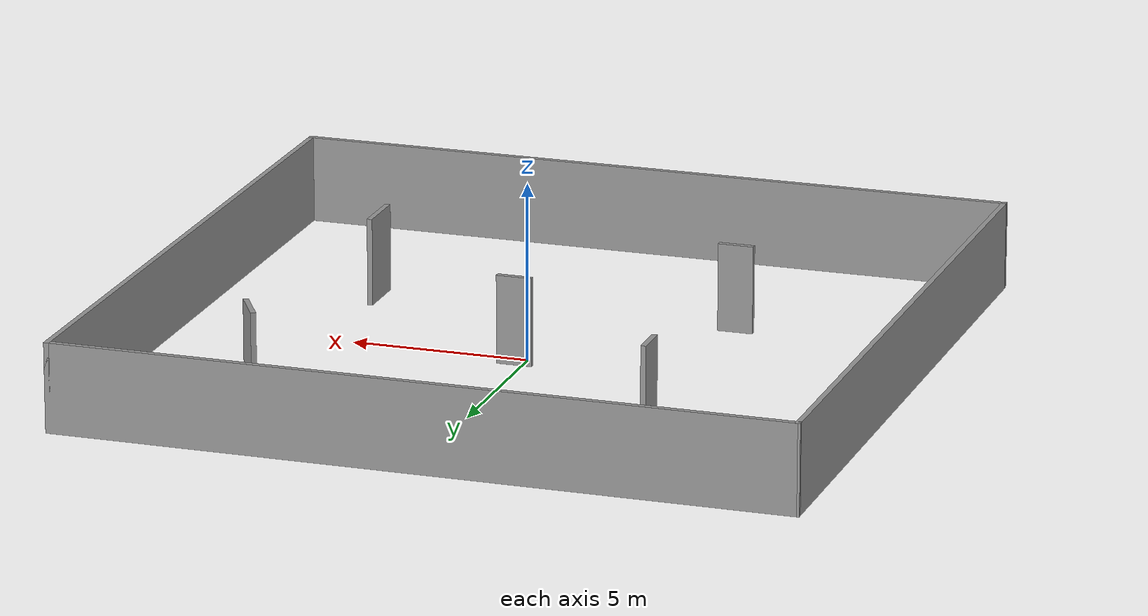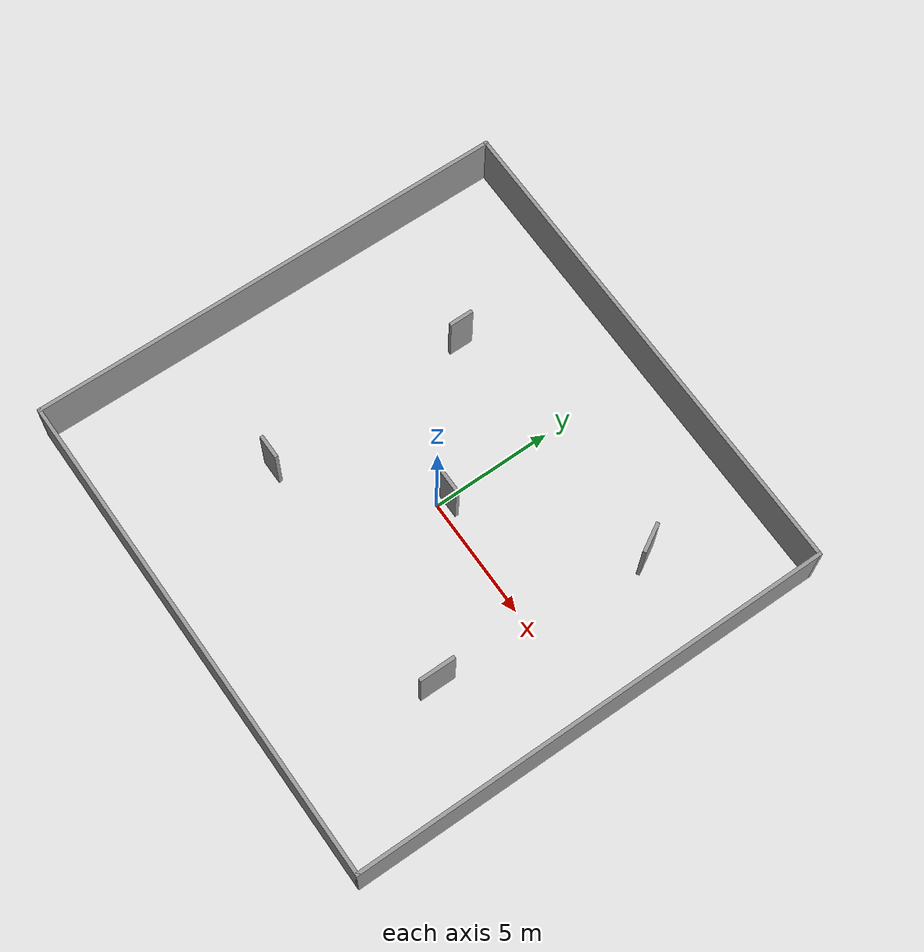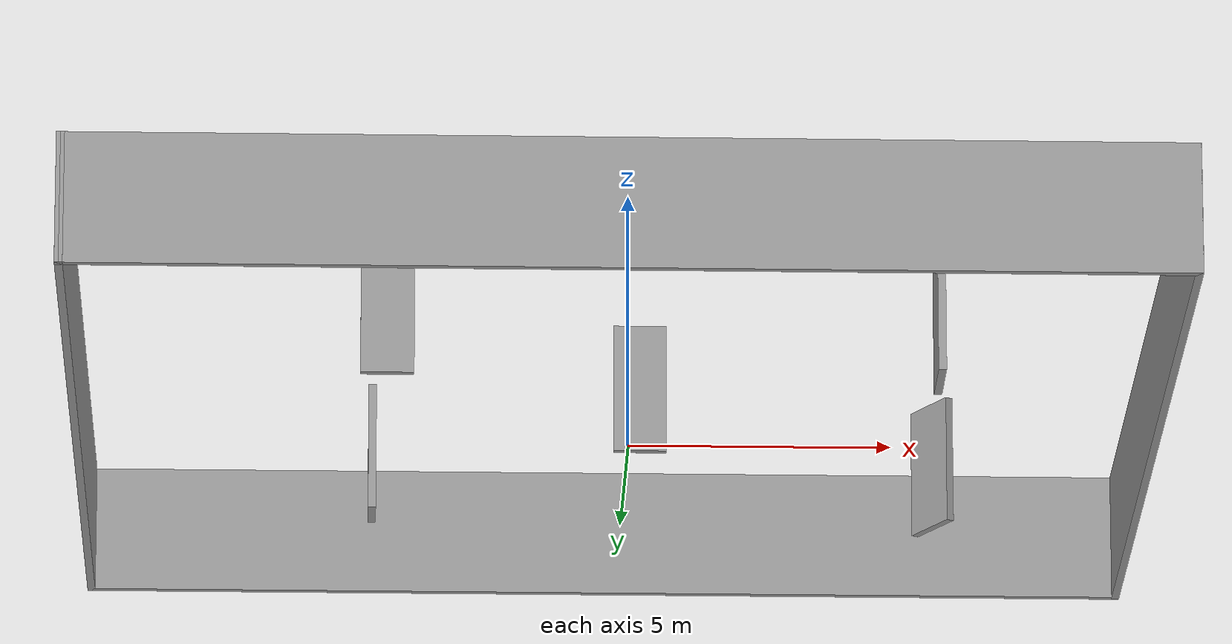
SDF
<?xml version='1.0'?>
<sdf version='1.7'>
  <model name='map4'>
    <pose>-0.28504 -0.361595 0 0 -0 0</pose>
    <link name='Wall_1'>
      <collision name='Wall_1_Collision'>
        <geometry>
          <box>
            <size>20.0011 0.15 2.5</size>
          </box>
        </geometry>
        <pose>0 0 1.25 0 -0 0</pose>
      </collision>
      <visual name='Wall_1_Visual'>
        <pose>0 0 1.25 0 -0 0</pose>
        <geometry>
          <box>
            <size>20.0011 0.15 2.5</size>
          </box>
        </geometry>
        <material>
          <script>
            <uri>file://media/materials/scripts/gazebo.material</uri>
            <name>Gazebo/Grey</name>
          </script>
          <ambient>1 1 1 1</ambient>
        </material>
        <meta>
          <layer>0</layer>
        </meta>
      </visual>
      <pose>-10.1937 0 0 0 -0 -1.58146</pose>
    </link>
    <link name='Wall_10'>
      <collision name='Wall_10_Collision'>
        <geometry>
          <box>
            <size>1 0.15 2.5</size>
          </box>
        </geometry>
        <pose>0 0 1.25 0 -0 0</pose>
      </collision>
      <visual name='Wall_10_Visual'>
        <pose>0 0 1.25 0 -0 0</pose>
        <geometry>
          <box>
            <size>1 0.15 2.5</size>
          </box>
        </geometry>
        <material>
          <script>
            <uri>file://media/materials/scripts/gazebo.material</uri>
            <name>Gazebo/Grey</name>
          </script>
          <ambient>1 1 1 1</ambient>
        </material>
        <meta>
          <layer>0</layer>
        </meta>
      </visual>
      <pose>-4.5534 4.83684 0 0 -0 -1.5708</pose>
    </link>
    <link name='Wall_12'>
      <collision name='Wall_12_Collision'>
        <geometry>
          <box>
            <size>1 0.15 2.5</size>
          </box>
        </geometry>
        <pose>0 0 1.25 0 -0 0</pose>
      </collision>
      <visual name='Wall_12_Visual'>
        <pose>0 0 1.25 0 -0 0</pose>
        <geometry>
          <box>
            <size>1 0.15 2.5</size>
          </box>
        </geometry>
        <material>
          <script>
            <uri>file://media/materials/scripts/gazebo.material</uri>
            <name>Gazebo/Grey</name>
          </script>
          <ambient>1 1 1 1</ambient>
        </material>
        <meta>
          <layer>0</layer>
        </meta>
      </visual>
      <pose>-4.32332 -3.84913 0 0 -0 0</pose>
    </link>
    <link name='Wall_14'>
      <collision name='Wall_14_Collision'>
        <geometry>
          <box>
            <size>1 0.15 2.5</size>
          </box>
        </geometry>
        <pose>0 0 1.25 0 -0 0</pose>
      </collision>
      <visual name='Wall_14_Visual'>
        <pose>0 0 1.25 0 -0 0</pose>
        <geometry>
          <box>
            <size>1 0.15 2.5</size>
          </box>
        </geometry>
        <material>
          <script>
            <uri>file://media/materials/scripts/gazebo.material</uri>
            <name>Gazebo/Grey</name>
          </script>
          <ambient>1 1 1 1</ambient>
        </material>
        <meta>
          <layer>0</layer>
        </meta>
      </visual>
      <pose>0.52913 0.744779 0 0 -0 0</pose>
    </link>
    <link name='Wall_17'>
      <collision name='Wall_17_Collision'>
        <geometry>
          <box>
            <size>1.5 0.15 2.5</size>
          </box>
        </geometry>
        <pose>0 0 1.25 0 -0 0</pose>
      </collision>
      <visual name='Wall_17_Visual'>
        <pose>0 0 1.25 0 -0 0</pose>
        <geometry>
          <box>
            <size>1.5 0.15 2.5</size>
          </box>
        </geometry>
        <material>
          <script>
            <uri>file://media/materials/scripts/gazebo.material</uri>
            <name>Gazebo/Grey</name>
          </script>
          <ambient>1 1 1 1</ambient>
        </material>
        <meta>
          <layer>0</layer>
        </meta>
      </visual>
      <pose>5.9907 -3.63154 0 0 -0 1.5708</pose>
    </link>
    <link name='Wall_19'>
      <collision name='Wall_19_Collision'>
        <geometry>
          <box>
            <size>1.25 0.15 2.5</size>
          </box>
        </geometry>
        <pose>0 0 1.25 0 -0 0</pose>
      </collision>
      <visual name='Wall_19_Visual'>
        <pose>0 0 1.25 0 -0 0</pose>
        <geometry>
          <box>
            <size>1.25 0.15 2.5</size>
          </box>
        </geometry>
        <material>
          <script>
            <uri>file://media/materials/scripts/gazebo.material</uri>
            <name>Gazebo/Grey</name>
          </script>
          <ambient>1 1 1 1</ambient>
        </material>
        <meta>
          <layer>0</layer>
        </meta>
      </visual>
      <pose>6.38503 5.39933 0 0 -0 -1.0472</pose>
    </link>
    <link name='Wall_5'>
      <collision name='Wall_5_Collision'>
        <geometry>
          <box>
            <size>20.75 0.15 2.5</size>
          </box>
        </geometry>
        <pose>0 0 1.25 0 -0 0</pose>
      </collision>
      <visual name='Wall_5_Visual'>
        <pose>0 0 1.25 0 -0 0</pose>
        <geometry>
          <box>
            <size>20.75 0.15 2.5</size>
          </box>
        </geometry>
        <material>
          <script>
            <uri>file://media/materials/scripts/gazebo.material</uri>
            <name>Gazebo/Grey</name>
          </script>
          <ambient>1 1 1 1</ambient>
        </material>
        <meta>
          <layer>0</layer>
        </meta>
      </visual>
      <pose>0.000397 -9.925 0 0 -0 0</pose>
    </link>
    <link name='Wall_6'>
      <collision name='Wall_6_Collision'>
        <geometry>
          <box>
            <size>20 0.15 2.5</size>
          </box>
        </geometry>
        <pose>0 0 1.25 0 -0 0</pose>
      </collision>
      <visual name='Wall_6_Visual'>
        <pose>0 0 1.25 0 -0 0</pose>
        <geometry>
          <box>
            <size>20 0.15 2.5</size>
          </box>
        </geometry>
        <material>
          <script>
            <uri>file://media/materials/scripts/gazebo.material</uri>
            <name>Gazebo/Grey</name>
          </script>
          <ambient>1 1 1 1</ambient>
        </material>
        <meta>
          <layer>0</layer>
        </meta>
      </visual>
      <pose>10.3004 0 0 0 -0 1.5708</pose>
    </link>
    <link name='Wall_8'>
      <collision name='Wall_8_Collision'>
        <geometry>
          <box>
            <size>20.5383 0.15 2.5</size>
          </box>
        </geometry>
        <pose>0 0 1.25 0 -0 0</pose>
      </collision>
      <visual name='Wall_8_Visual'>
        <pose>0 0 1.25 0 -0 0</pose>
        <geometry>
          <box>
            <size>20.5383 0.15 2.5</size>
          </box>
        </geometry>
        <material>
          <script>
            <uri>file://media/materials/scripts/gazebo.material</uri>
            <name>Gazebo/Grey</name>
          </script>
          <ambient>1 1 1 1</ambient>
        </material>
        <meta>
          <layer>0</layer>
        </meta>
      </visual>
      <pose>0.106257 9.925 0 0 -0 0</pose>
    </link>
    <static>1</static>
  </model>
</sdf>
